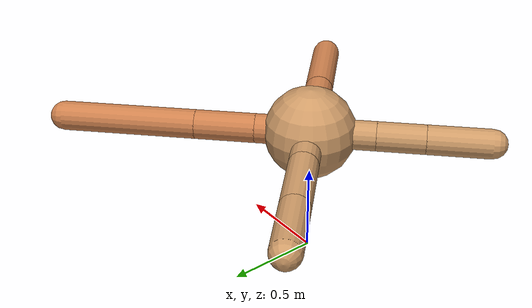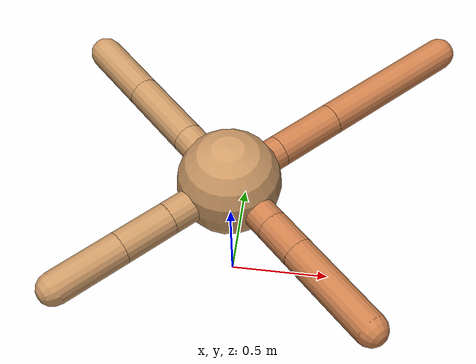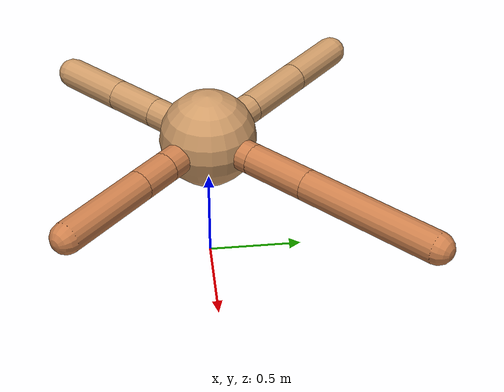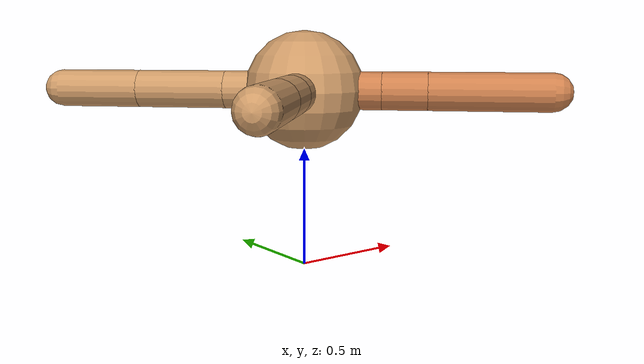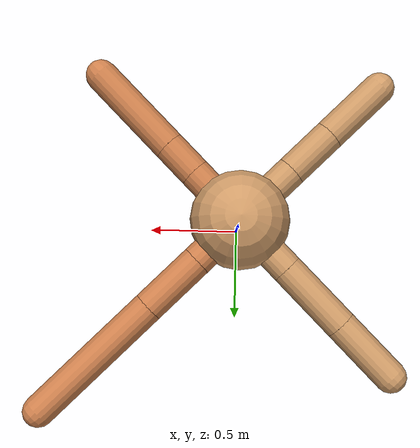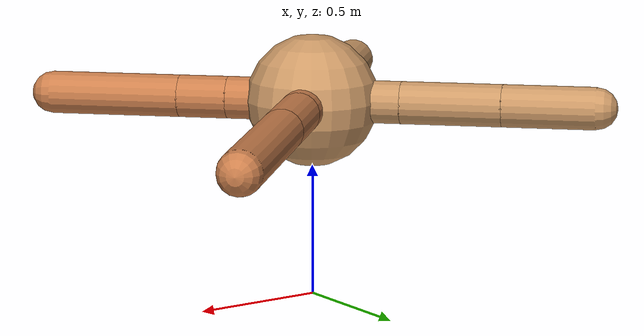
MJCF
<mujoco model="ant">
  <compiler angle="degree" coordinate="local" inertiafromgeom="true" />
  <option integrator="RK4" timestep="0.01" />
  <custom>
    <numeric data="0.0 0.0 0.55 1.0 0.0 0.0 0.0 0.0 1.0 0.0 -1.0 0.0 -1.0 0.0 1.0" name="init_qpos" />
  </custom>
  <default>
    <joint armature="1" damping="1" limited="true" />
    <geom conaffinity="0" condim="3" density="5.0" friction="1.5 0.1 0.1" margin="0.01" rgba="0.8 0.6 0.4 1" />
  </default>
  <worldbody>
    <body name="torso" pos="0 0 0.75">
      <geom name="torso_geom" pos="0 0 0" size="0.25" type="sphere" />

      <body name="front_left_leg" pos="0 0 0">
        <geom fromto="0.0 0.0 0.0 0.20935567359527452 0.20935567359527452 0.0" name="aux_1_geom" size="0.08" type="capsule" rgba=".8 .5 .3 1" />
        <body name="aux_1" pos="0.20935567359527452 0.20935567359527452 0.0">
          <joint axis="0 0 1" name="hip_1" pos="0.0 0.0 0.0" range="-40 40" type="hinge" />
          <geom fromto="0.0 0.0 0.0 0.23267609191757882 0.23267609191757882 0.0" name="left_leg_geom" size="0.08" type="capsule" rgba=".8 .5 .3 1" />
          <body pos="0.23267609191757882 0.23267609191757882 0.0" name="front_left_foot">
            <joint axis="-1 1 0" name="ankle_1" pos="0.0 0.0 0.0" range="30 100" type="hinge" />
            <geom fromto="0.0 0.0 0.0 0.5207672663061433 0.5207672663061433 0.0" name="left_ankle_geom" size="0.08" type="capsule" rgba=".8 .5 .3 1" />
          </body>
        </body>
      </body>
      <body name="front_right_leg" pos="0 0 0">
        <geom fromto="0.0 0.0 0.0 -0.23823927322345417 0.23823927322345417 0.0" name="aux_2_geom" size="0.08" type="capsule" />
        <body name="aux_2" pos="-0.23823927322345417 0.23823927322345417 0.0">
          <joint axis="0 0 1" name="hip_2" pos="0.0 0.0 0.0" range="-40 40" type="hinge" />
          <geom fromto="0.0 0.0 0.0 -0.26885273938601156 0.26885273938601156 0.0" name="right_leg_geom" size="0.08" type="capsule" />
          <body pos="-0.26885273938601156 0.26885273938601156 0.0" name="front_right_foot">
            <joint axis="1 1 0" name="ankle_2" pos="0.0 0.0 0.0" range="-100 -30" type="hinge" />
            <geom fromto="0.0 0.0 0.0 -0.2477705119787523 0.2477705119787523 0.0" name="right_ankle_geom" size="0.08" type="capsule" />
          </body>
        </body>
      </body>
      <body name="left_back_leg" pos="0 0 0">
        <geom fromto="0.0 0.0 0.0 -0.24944989785991545 -0.24944989785991545 0.0" name="aux_3_geom" size="0.08" type="capsule" />
        <body name="aux_3" pos="-0.24944989785991545 -0.24944989785991545 0.0">
          <joint axis="0 0 1" name="hip_3" pos="0.0 0.0 0.0" range="-40 40" type="hinge" />
          <geom fromto="0.0 0.0 0.0 -0.18559048862746597 -0.18559048862746597 0.0" name="back_leg_geom" size="0.08" type="capsule" />
          <body pos="-0.18559048862746597 -0.18559048862746597 0.0" name="left_back_foot">
            <joint axis="-1 1 0" name="ankle_3" pos="0.0 0.0 0.0" range="-100 -30" type="hinge" />
            <geom fromto="0.0 0.0 0.0 -0.24517530867652565 -0.24517530867652565 0.0" name="third_ankle_geom" size="0.08" type="capsule" />
          </body>
        </body>
      </body>
      <body name="right_back_leg" pos="0 0 0">
        <geom fromto="0.0 0.0 0.0 0.2294937387130662 -0.2294937387130662 0.0" name="aux_4_geom" size="0.08" type="capsule" rgba=".8 .5 .3 1" />
        <body name="aux_4" pos="0.2294937387130662 -0.2294937387130662 0.0">
          <joint axis="0 0 1" name="hip_4" pos="0.0 0.0 0.0" range="-40 40" type="hinge" />
          <geom fromto="0.0 0.0 0.0 0.1317789766787598 -0.1317789766787598 0.0" name="rightback_leg_geom" size="0.08" type="capsule" rgba=".8 .5 .3 1" />
          <body pos="0.1317789766787598 -0.1317789766787598 0.0" name="right_back_foot">
            <joint axis="1 1 0" name="ankle_4" pos="0.0 0.0 0.0" range="30 100" type="hinge" />
            <geom fromto="0.0 0.0 0.0 0.3507216086733594 -0.3507216086733594 0.0" name="fourth_ankle_geom" size="0.08" type="capsule" rgba=".8 .5 .3 1" />
          </body>
        </body>
      </body>
    </body>
  </worldbody>
  <actuator>
    <motor ctrllimited="true" ctrlrange="-1.0 1.0" joint="hip_4" gear="150" />
    <motor ctrllimited="true" ctrlrange="-1.0 1.0" joint="ankle_4" gear="150" />
    <motor ctrllimited="true" ctrlrange="-1.0 1.0" joint="hip_1" gear="150" />
    <motor ctrllimited="true" ctrlrange="-1.0 1.0" joint="ankle_1" gear="150" />
    <motor ctrllimited="true" ctrlrange="-1.0 1.0" joint="hip_2" gear="150" />
    <motor ctrllimited="true" ctrlrange="-1.0 1.0" joint="ankle_2" gear="150" />
    <motor ctrllimited="true" ctrlrange="-1.0 1.0" joint="hip_3" gear="150" />
    <motor ctrllimited="true" ctrlrange="-1.0 1.0" joint="ankle_3" gear="150" />
  </actuator>
</mujoco>
